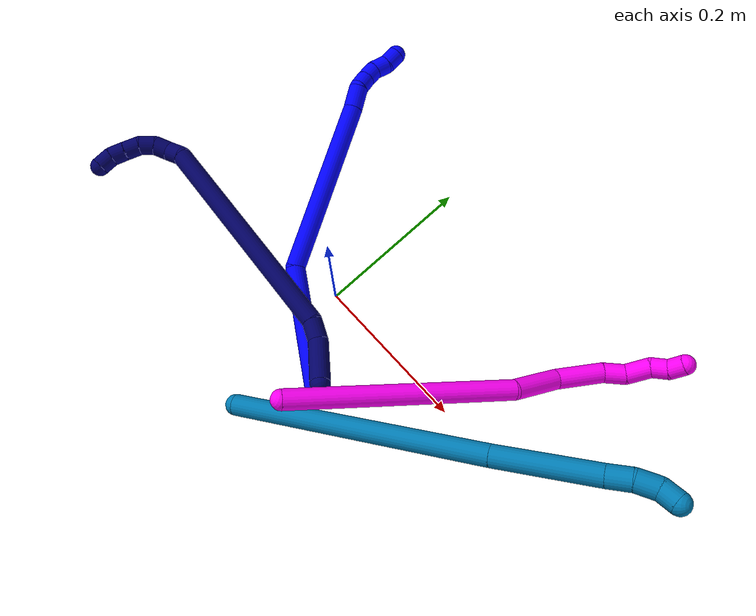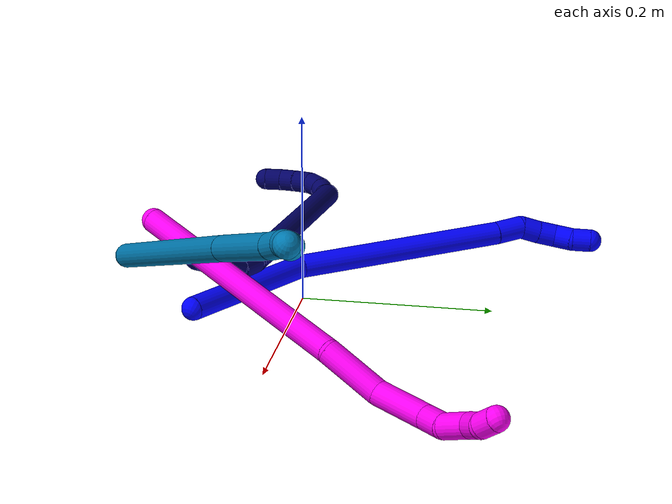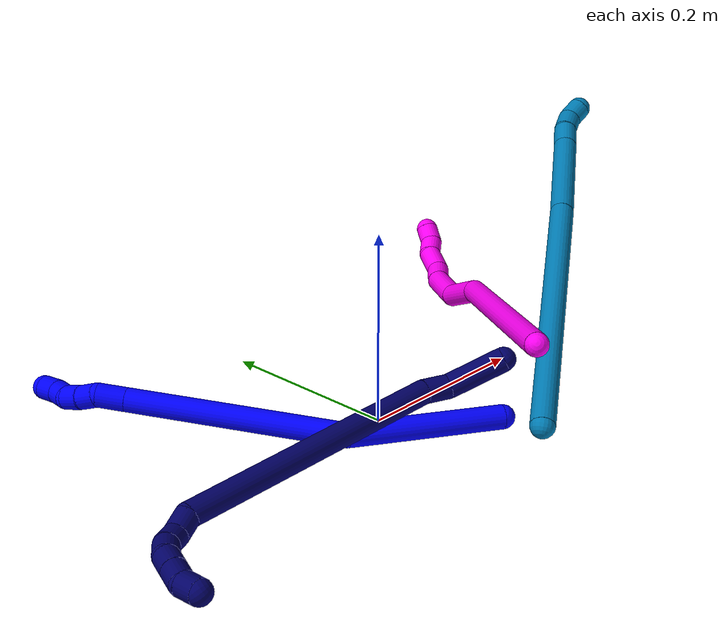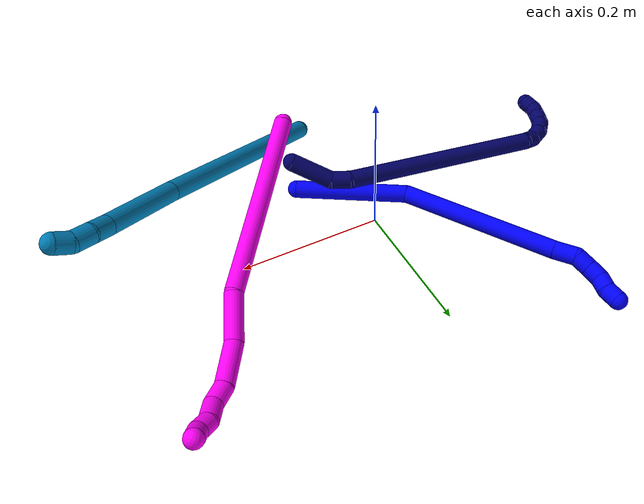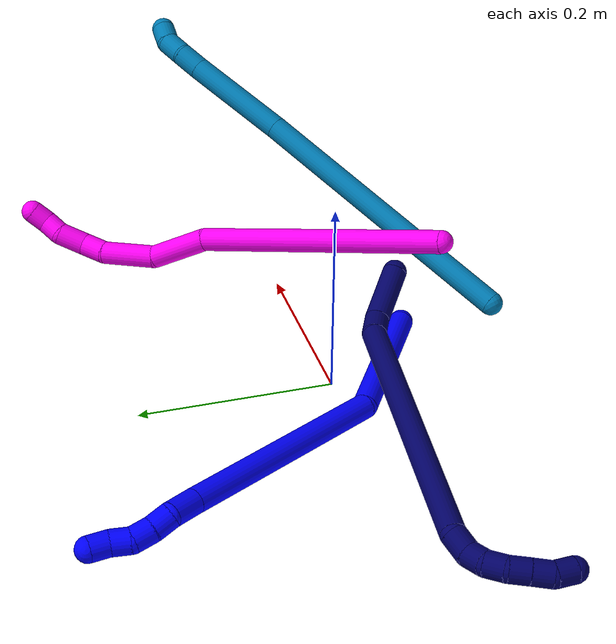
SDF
<sdf version="1.7">
 <world name="default">
  <model name="1">
   <static>0</static>
   <link name="1">
    <collision name="collision-cylinder-e_1_1_4">
     <pose>-0.035185 0.035202 0.062332 -0.514101 -0.456832 0.122067</pose>
     <geometry><cylinder><radius>0.0125</radius><length>0.15953</length></cylinder></geometry>
     <surface>
      <friction><ode><mu>1.16</mu><mu2>1.16</mu2><slip1>0</slip1><slip2>0</slip2></ode></friction>
      <contact><ode><kp>1e+06</kp><kd>1</kd><max_vel>0</max_vel><min_depth>0.001</min_depth></ode></contact>
     </surface>
    </collision>
    <visual name="visual-cylinder-e_1_1_4">
     <pose>-0.035185 0.035202 0.062332 -0.514101 -0.456832 0.122067</pose>
     <geometry><cylinder><radius>0.0125</radius><length>0.15953</length></cylinder></geometry>
     <material><ambient>0 0 1 1</ambient></material>
    </visual>
    <collision name="collision-cylinder-e_2_4_5">
     <pose>-0.081371 0.157982 0.197518 -0.876915 -0.096266 0.045166</pose>
     <geometry><cylinder><radius>0.0125</radius><length>0.228896</length></cylinder></geometry>
     <surface>
      <friction><ode><mu>1.16</mu><mu2>1.16</mu2><slip1>0</slip1><slip2>0</slip2></ode></friction>
      <contact><ode><kp>1e+06</kp><kd>1</kd><max_vel>0</max_vel><min_depth>0.001</min_depth></ode></contact>
     </surface>
    </collision>
    <visual name="visual-cylinder-e_2_4_5">
     <pose>-0.081371 0.157982 0.197518 -0.876915 -0.096266 0.045166</pose>
     <geometry><cylinder><radius>0.0125</radius><length>0.228896</length></cylinder></geometry>
     <material><ambient>0 0 1 1</ambient></material>
    </visual>
    <collision name="collision-cylinder-e_3_5_6">
     <pose>-0.094119 0.256439 0.280994 -0.797368 -0.114472 0.048264</pose>
     <geometry><cylinder><radius>0.0125</radius><length>0.030611</length></cylinder></geometry>
     <surface>
      <friction><ode><mu>1.16</mu><mu2>1.16</mu2><slip1>0</slip1><slip2>0</slip2></ode></friction>
      <contact><ode><kp>1e+06</kp><kd>1</kd><max_vel>0</max_vel><min_depth>0.001</min_depth></ode></contact>
     </surface>
    </collision>
    <visual name="visual-cylinder-e_3_5_6">
     <pose>-0.094119 0.256439 0.280994 -0.797368 -0.114472 0.048264</pose>
     <geometry><cylinder><radius>0.0125</radius><length>0.030611</length></cylinder></geometry>
     <material><ambient>0 0 1 1</ambient></material>
    </visual>
    <collision name="collision-cylinder-e_4_6_7">
     <pose>-0.098407 0.276807 0.294485 -1.27721 -0.250798 0.186626</pose>
     <geometry><cylinder><radius>0.0125</radius><length>0.020465</length></cylinder></geometry>
     <surface>
      <friction><ode><mu>1.16</mu><mu2>1.16</mu2><slip1>0</slip1><slip2>0</slip2></ode></friction>
      <contact><ode><kp>1e+06</kp><kd>1</kd><max_vel>0</max_vel><min_depth>0.001</min_depth></ode></contact>
     </surface>
    </collision>
    <visual name="visual-cylinder-e_4_6_7">
     <pose>-0.098407 0.276807 0.294485 -1.27721 -0.250798 0.186626</pose>
     <geometry><cylinder><radius>0.0125</radius><length>0.020465</length></cylinder></geometry>
     <material><ambient>0 0 1 1</ambient></material>
    </visual>
    <collision name="collision-cylinder-e_5_7_8">
     <pose>-0.102002 0.296021 0.300208 -1.28537 -0.103709 0.07768</pose>
     <geometry><cylinder><radius>0.0125</radius><length>0.020382</length></cylinder></geometry>
     <surface>
      <friction><ode><mu>1.16</mu><mu2>1.16</mu2><slip1>0</slip1><slip2>0</slip2></ode></friction>
      <contact><ode><kp>1e+06</kp><kd>1</kd><max_vel>0</max_vel><min_depth>0.001</min_depth></ode></contact>
     </surface>
    </collision>
    <visual name="visual-cylinder-e_5_7_8">
     <pose>-0.102002 0.296021 0.300208 -1.28537 -0.103709 0.07768</pose>
     <geometry><cylinder><radius>0.0125</radius><length>0.020382</length></cylinder></geometry>
     <material><ambient>0 0 1 1</ambient></material>
    </visual>
    <collision name="collision-cylinder-e_6_8_9">
     <pose>-0.100186 0.315313 0.303796 -1.49415 0.290772 -0.269566</pose>
     <geometry><cylinder><radius>0.0125</radius><length>0.020027</length></cylinder></geometry>
     <surface>
      <friction><ode><mu>1.16</mu><mu2>1.16</mu2><slip1>0</slip1><slip2>0</slip2></ode></friction>
      <contact><ode><kp>1e+06</kp><kd>1</kd><max_vel>0</max_vel><min_depth>0.001</min_depth></ode></contact>
     </surface>
    </collision>
    <visual name="visual-cylinder-e_6_8_9">
     <pose>-0.100186 0.315313 0.303796 -1.49415 0.290772 -0.269566</pose>
     <geometry><cylinder><radius>0.0125</radius><length>0.020027</length></cylinder></geometry>
     <material><ambient>0 0 1 1</ambient></material>
    </visual>
    <collision name="collision-cylinder-e_7_9_2">
     <pose>-0.096123 0.334279 0.307857 -1.23075 0.118917 -0.084118</pose>
     <geometry><cylinder><radius>0.0125</radius><length>0.020087</length></cylinder></geometry>
     <surface>
      <friction><ode><mu>1.16</mu><mu2>1.16</mu2><slip1>0</slip1><slip2>0</slip2></ode></friction>
      <contact><ode><kp>1e+06</kp><kd>1</kd><max_vel>0</max_vel><min_depth>0.001</min_depth></ode></contact>
     </surface>
    </collision>
    <visual name="visual-cylinder-e_7_9_2">
     <pose>-0.096123 0.334279 0.307857 -1.23075 0.118917 -0.084118</pose>
     <geometry><cylinder><radius>0.0125</radius><length>0.020087</length></cylinder></geometry>
     <material><ambient>0 0 1 1</ambient></material>
    </visual>
    <collision name="collision-sphere-2">
     <pose>-0.094932 0.343681 0.311183 0 -0 0</pose>
     <geometry><sphere><radius>0.0125</radius></sphere></geometry>
     <surface>
      <friction><ode><mu>1.16</mu><mu2>1.16</mu2><slip1>0</slip1><slip2>0</slip2></ode></friction>
      <contact><ode><kp>1e+06</kp><kd>1</kd><max_vel>0</max_vel><min_depth>0.001</min_depth></ode></contact>
     </surface>
    </collision>
    <visual name="visual-sphere-2">
     <pose>-0.094932 0.343681 0.311183 0 -0 0</pose>
     <geometry><sphere><radius>0.0125</radius></sphere></geometry>
     <material><ambient>0 0 1 1</ambient></material>
    </visual>
    <collision name="collision-sphere-9">
     <pose>-0.097315 0.324878 0.304531 0 -0 0</pose>
     <geometry><sphere><radius>0.0125</radius></sphere></geometry>
     <surface>
      <friction><ode><mu>1.16</mu><mu2>1.16</mu2><slip1>0</slip1><slip2>0</slip2></ode></friction>
      <contact><ode><kp>1e+06</kp><kd>1</kd><max_vel>0</max_vel><min_depth>0.001</min_depth></ode></contact>
     </surface>
    </collision>
    <visual name="visual-sphere-9">
     <pose>-0.097315 0.324878 0.304531 0 -0 0</pose>
     <geometry><sphere><radius>0.0125</radius></sphere></geometry>
     <material><ambient>0 0 1 1</ambient></material>
    </visual>
    <collision name="collision-sphere-4">
     <pose>-0.07037 0.070405 0.124664 0 -0 0</pose>
     <geometry><sphere><radius>0.0125</radius></sphere></geometry>
     <surface>
      <friction><ode><mu>1.16</mu><mu2>1.16</mu2><slip1>0</slip1><slip2>0</slip2></ode></friction>
      <contact><ode><kp>1e+06</kp><kd>1</kd><max_vel>0</max_vel><min_depth>0.001</min_depth></ode></contact>
     </surface>
    </collision>
    <visual name="visual-sphere-4">
     <pose>-0.07037 0.070405 0.124664 0 -0 0</pose>
     <geometry><sphere><radius>0.0125</radius></sphere></geometry>
     <material><ambient>0 0 1 1</ambient></material>
    </visual>
    <collision name="collision-sphere-1">
     <geometry><sphere><radius>0.0125</radius></sphere></geometry>
     <surface>
      <friction><ode><mu>1.16</mu><mu2>1.16</mu2><slip1>0</slip1><slip2>0</slip2></ode></friction>
      <contact><ode><kp>1e+06</kp><kd>1</kd><max_vel>0</max_vel><min_depth>0.001</min_depth></ode></contact>
     </surface>
    </collision>
    <visual name="visual-sphere-1">
     <geometry><sphere><radius>0.0125</radius></sphere></geometry>
     <material><ambient>0 0 1 1</ambient></material>
    </visual>
    <collision name="collision-sphere-8">
     <pose>-0.103057 0.305748 0.303062 0 -0 0</pose>
     <geometry><sphere><radius>0.0125</radius></sphere></geometry>
     <surface>
      <friction><ode><mu>1.16</mu><mu2>1.16</mu2><slip1>0</slip1><slip2>0</slip2></ode></friction>
      <contact><ode><kp>1e+06</kp><kd>1</kd><max_vel>0</max_vel><min_depth>0.001</min_depth></ode></contact>
     </surface>
    </collision>
    <visual name="visual-sphere-8">
     <pose>-0.103057 0.305748 0.303062 0 -0 0</pose>
     <geometry><sphere><radius>0.0125</radius></sphere></geometry>
     <material><ambient>0 0 1 1</ambient></material>
    </visual>
    <collision name="collision-sphere-5">
     <pose>-0.092371 0.245559 0.270372 0 -0 0</pose>
     <geometry><sphere><radius>0.0125</radius></sphere></geometry>
     <surface>
      <friction><ode><mu>1.16</mu><mu2>1.16</mu2><slip1>0</slip1><slip2>0</slip2></ode></friction>
      <contact><ode><kp>1e+06</kp><kd>1</kd><max_vel>0</max_vel><min_depth>0.001</min_depth></ode></contact>
     </surface>
    </collision>
    <visual name="visual-sphere-5">
     <pose>-0.092371 0.245559 0.270372 0 -0 0</pose>
     <geometry><sphere><radius>0.0125</radius></sphere></geometry>
     <material><ambient>0 0 1 1</ambient></material>
    </visual>
    <collision name="collision-sphere-6">
     <pose>-0.095868 0.267318 0.291617 0 -0 0</pose>
     <geometry><sphere><radius>0.0125</radius></sphere></geometry>
     <surface>
      <friction><ode><mu>1.16</mu><mu2>1.16</mu2><slip1>0</slip1><slip2>0</slip2></ode></friction>
      <contact><ode><kp>1e+06</kp><kd>1</kd><max_vel>0</max_vel><min_depth>0.001</min_depth></ode></contact>
     </surface>
    </collision>
    <visual name="visual-sphere-6">
     <pose>-0.095868 0.267318 0.291617 0 -0 0</pose>
     <geometry><sphere><radius>0.0125</radius></sphere></geometry>
     <material><ambient>0 0 1 1</ambient></material>
    </visual>
    <collision name="collision-sphere-7">
     <pose>-0.100947 0.286295 0.297354 0 -0 0</pose>
     <geometry><sphere><radius>0.0125</radius></sphere></geometry>
     <surface>
      <friction><ode><mu>1.16</mu><mu2>1.16</mu2><slip1>0</slip1><slip2>0</slip2></ode></friction>
      <contact><ode><kp>1e+06</kp><kd>1</kd><max_vel>0</max_vel><min_depth>0.001</min_depth></ode></contact>
     </surface>
    </collision>
    <visual name="visual-sphere-7">
     <pose>-0.100947 0.286295 0.297354 0 -0 0</pose>
     <geometry><sphere><radius>0.0125</radius></sphere></geometry>
     <material><ambient>0 0 1 1</ambient></material>
    </visual>
    <inertial>
     <pose>-0.0703 0.148711 0.176341 0 -0 0</pose>
     <mass>0.5</mass>
     <inertia>
      <ixx>0.001394</ixx>
      <ixy>0</ixy>
      <ixz>0</ixz>
      <iyy>0.001069</iyy>
      <iyz>0</iyz>
      <izz>-0.000658</izz>
     </inertia>
    </inertial>
   </link>
   <pose>0.074325 -0.100117 0.011489 -0.525991 -0.793883 0.322089</pose>
  </model>
  <model name="7">
   <static>0</static>
   <link name="7">
    <collision name="collision-cylinder-e_1_1_4">
     <pose>-0.000614 -0.005677 0.02973 0.188693 -0.02029 -0.00192</pose>
     <geometry><cylinder><radius>0.0125</radius><length>0.060546</length></cylinder></geometry>
     <surface>
      <friction><ode><mu>1.16</mu><mu2>1.16</mu2><slip1>0</slip1><slip2>0</slip2></ode></friction>
      <contact><ode><kp>1e+06</kp><kd>1</kd><max_vel>0</max_vel><min_depth>0.001</min_depth></ode></contact>
     </surface>
    </collision>
    <visual name="visual-cylinder-e_1_1_4">
     <pose>-0.000614 -0.005677 0.02973 0.188693 -0.02029 -0.00192</pose>
     <geometry><cylinder><radius>0.0125</radius><length>0.060546</length></cylinder></geometry>
     <material><ambient>0.003922 0 0.403922 1</ambient></material>
    </visual>
    <collision name="collision-cylinder-e_2_4_5">
     <pose>-0.007382 -0.013834 0.071319 0.206097 -0.46996 -0.049506</pose>
     <geometry><cylinder><radius>0.0125</radius><length>0.027179</length></cylinder></geometry>
     <surface>
      <friction><ode><mu>1.16</mu><mu2>1.16</mu2><slip1>0</slip1><slip2>0</slip2></ode></friction>
      <contact><ode><kp>1e+06</kp><kd>1</kd><max_vel>0</max_vel><min_depth>0.001</min_depth></ode></contact>
     </surface>
    </collision>
    <visual name="visual-cylinder-e_2_4_5">
     <pose>-0.007382 -0.013834 0.071319 0.206097 -0.46996 -0.049506</pose>
     <geometry><cylinder><radius>0.0125</radius><length>0.027179</length></cylinder></geometry>
     <material><ambient>0.003922 0 0.403922 1</ambient></material>
    </visual>
    <collision name="collision-cylinder-e_3_5_6">
     <pose>-0.090787 0.00655 0.20323 -0.188195 -0.563704 0.054642</pose>
     <geometry><cylinder><radius>0.0125</radius><length>0.289155</length></cylinder></geometry>
     <surface>
      <friction><ode><mu>1.16</mu><mu2>1.16</mu2><slip1>0</slip1><slip2>0</slip2></ode></friction>
      <contact><ode><kp>1e+06</kp><kd>1</kd><max_vel>0</max_vel><min_depth>0.001</min_depth></ode></contact>
     </surface>
    </collision>
    <visual name="visual-cylinder-e_3_5_6">
     <pose>-0.090787 0.00655 0.20323 -0.188195 -0.563704 0.054642</pose>
     <geometry><cylinder><radius>0.0125</radius><length>0.289155</length></cylinder></geometry>
     <material><ambient>0.003922 0 0.403922 1</ambient></material>
    </visual>
    <collision name="collision-cylinder-e_4_6_7">
     <pose>-0.172062 0.036074 0.331624 -0.673738 -0.360406 0.127432</pose>
     <geometry><cylinder><radius>0.0125</radius><length>0.022818</length></cylinder></geometry>
     <surface>
      <friction><ode><mu>1.16</mu><mu2>1.16</mu2><slip1>0</slip1><slip2>0</slip2></ode></friction>
      <contact><ode><kp>1e+06</kp><kd>1</kd><max_vel>0</max_vel><min_depth>0.001</min_depth></ode></contact>
     </surface>
    </collision>
    <visual name="visual-cylinder-e_4_6_7">
     <pose>-0.172062 0.036074 0.331624 -0.673738 -0.360406 0.127432</pose>
     <geometry><cylinder><radius>0.0125</radius><length>0.022818</length></cylinder></geometry>
     <material><ambient>0.003922 0 0.403922 1</ambient></material>
    </visual>
    <collision name="collision-cylinder-e_5_7_8">
     <pose>-0.183216 0.048072 0.344694 -0.845937 -0.78554 0.368745</pose>
     <geometry><cylinder><radius>0.0125</radius><length>0.020166</length></cylinder></geometry>
     <surface>
      <friction><ode><mu>1.16</mu><mu2>1.16</mu2><slip1>0</slip1><slip2>0</slip2></ode></friction>
      <contact><ode><kp>1e+06</kp><kd>1</kd><max_vel>0</max_vel><min_depth>0.001</min_depth></ode></contact>
     </surface>
    </collision>
    <visual name="visual-cylinder-e_5_7_8">
     <pose>-0.183216 0.048072 0.344694 -0.845937 -0.78554 0.368745</pose>
     <geometry><cylinder><radius>0.0125</radius><length>0.020166</length></cylinder></geometry>
     <material><ambient>0.003922 0 0.403922 1</ambient></material>
    </visual>
    <collision name="collision-cylinder-e_6_8_9">
     <pose>-0.196363 0.061267 0.351193 -1.34896 -0.641426 0.519219</pose>
     <geometry><cylinder><radius>0.0125</radius><length>0.020109</length></cylinder></geometry>
     <surface>
      <friction><ode><mu>1.16</mu><mu2>1.16</mu2><slip1>0</slip1><slip2>0</slip2></ode></friction>
      <contact><ode><kp>1e+06</kp><kd>1</kd><max_vel>0</max_vel><min_depth>0.001</min_depth></ode></contact>
     </surface>
    </collision>
    <visual name="visual-cylinder-e_6_8_9">
     <pose>-0.196363 0.061267 0.351193 -1.34896 -0.641426 0.519219</pose>
     <geometry><cylinder><radius>0.0125</radius><length>0.020109</length></cylinder></geometry>
     <material><ambient>0.003922 0 0.403922 1</ambient></material>
    </visual>
    <collision name="collision-cylinder-e_7_9_10">
     <pose>-0.205982 0.078445 0.352394 -1.63202 -0.368318 0.391015</pose>
     <geometry><cylinder><radius>0.0125</radius><length>0.020016</length></cylinder></geometry>
     <surface>
      <friction><ode><mu>1.16</mu><mu2>1.16</mu2><slip1>0</slip1><slip2>0</slip2></ode></friction>
      <contact><ode><kp>1e+06</kp><kd>1</kd><max_vel>0</max_vel><min_depth>0.001</min_depth></ode></contact>
     </surface>
    </collision>
    <visual name="visual-cylinder-e_7_9_10">
     <pose>-0.205982 0.078445 0.352394 -1.63202 -0.368318 0.391015</pose>
     <geometry><cylinder><radius>0.0125</radius><length>0.020016</length></cylinder></geometry>
     <material><ambient>0.003922 0 0.403922 1</ambient></material>
    </visual>
    <collision name="collision-cylinder-e_8_10_11">
     <pose>-0.212911 0.097184 0.351329 -1.6232 -0.338956 0.356827</pose>
     <geometry><cylinder><radius>0.0125</radius><length>0.020005</length></cylinder></geometry>
     <surface>
      <friction><ode><mu>1.16</mu><mu2>1.16</mu2><slip1>0</slip1><slip2>0</slip2></ode></friction>
      <contact><ode><kp>1e+06</kp><kd>1</kd><max_vel>0</max_vel><min_depth>0.001</min_depth></ode></contact>
     </surface>
    </collision>
    <visual name="visual-cylinder-e_8_10_11">
     <pose>-0.212911 0.097184 0.351329 -1.6232 -0.338956 0.356827</pose>
     <geometry><cylinder><radius>0.0125</radius><length>0.020005</length></cylinder></geometry>
     <material><ambient>0.003922 0 0.403922 1</ambient></material>
    </visual>
    <collision name="collision-cylinder-e_9_11_2">
     <pose>-0.217895 0.115464 0.346498 -2.02604 -0.166574 0.266046</pose>
     <geometry><cylinder><radius>0.0125</radius><length>0.020006</length></cylinder></geometry>
     <surface>
      <friction><ode><mu>1.16</mu><mu2>1.16</mu2><slip1>0</slip1><slip2>0</slip2></ode></friction>
      <contact><ode><kp>1e+06</kp><kd>1</kd><max_vel>0</max_vel><min_depth>0.001</min_depth></ode></contact>
     </surface>
    </collision>
    <visual name="visual-cylinder-e_9_11_2">
     <pose>-0.217895 0.115464 0.346498 -2.02604 -0.166574 0.266046</pose>
     <geometry><cylinder><radius>0.0125</radius><length>0.020006</length></cylinder></geometry>
     <material><ambient>0.003922 0 0.403922 1</ambient></material>
    </visual>
    <collision name="collision-sphere-2">
     <pose>-0.219554 0.124324 0.34216 0 -0 0</pose>
     <geometry><sphere><radius>0.0125</radius></sphere></geometry>
     <surface>
      <friction><ode><mu>1.16</mu><mu2>1.16</mu2><slip1>0</slip1><slip2>0</slip2></ode></friction>
      <contact><ode><kp>1e+06</kp><kd>1</kd><max_vel>0</max_vel><min_depth>0.001</min_depth></ode></contact>
     </surface>
    </collision>
    <visual name="visual-sphere-2">
     <pose>-0.219554 0.124324 0.34216 0 -0 0</pose>
     <geometry><sphere><radius>0.0125</radius></sphere></geometry>
     <material><ambient>0.003922 0 0.403922 1</ambient></material>
    </visual>
    <collision name="collision-sphere-11">
     <pose>-0.216237 0.106605 0.350835 0 -0 0</pose>
     <geometry><sphere><radius>0.0125</radius></sphere></geometry>
     <surface>
      <friction><ode><mu>1.16</mu><mu2>1.16</mu2><slip1>0</slip1><slip2>0</slip2></ode></friction>
      <contact><ode><kp>1e+06</kp><kd>1</kd><max_vel>0</max_vel><min_depth>0.001</min_depth></ode></contact>
     </surface>
    </collision>
    <visual name="visual-sphere-11">
     <pose>-0.216237 0.106605 0.350835 0 -0 0</pose>
     <geometry><sphere><radius>0.0125</radius></sphere></geometry>
     <material><ambient>0.003922 0 0.403922 1</ambient></material>
    </visual>
    <collision name="collision-sphere-10">
     <pose>-0.209585 0.087764 0.351823 0 -0 0</pose>
     <geometry><sphere><radius>0.0125</radius></sphere></geometry>
     <surface>
      <friction><ode><mu>1.16</mu><mu2>1.16</mu2><slip1>0</slip1><slip2>0</slip2></ode></friction>
      <contact><ode><kp>1e+06</kp><kd>1</kd><max_vel>0</max_vel><min_depth>0.001</min_depth></ode></contact>
     </surface>
    </collision>
    <visual name="visual-sphere-10">
     <pose>-0.209585 0.087764 0.351823 0 -0 0</pose>
     <geometry><sphere><radius>0.0125</radius></sphere></geometry>
     <material><ambient>0.003922 0 0.403922 1</ambient></material>
    </visual>
    <collision name="collision-sphere-9">
     <pose>-0.202379 0.069126 0.352966 0 -0 0</pose>
     <geometry><sphere><radius>0.0125</radius></sphere></geometry>
     <surface>
      <friction><ode><mu>1.16</mu><mu2>1.16</mu2><slip1>0</slip1><slip2>0</slip2></ode></friction>
      <contact><ode><kp>1e+06</kp><kd>1</kd><max_vel>0</max_vel><min_depth>0.001</min_depth></ode></contact>
     </surface>
    </collision>
    <visual name="visual-sphere-9">
     <pose>-0.202379 0.069126 0.352966 0 -0 0</pose>
     <geometry><sphere><radius>0.0125</radius></sphere></geometry>
     <material><ambient>0.003922 0 0.403922 1</ambient></material>
    </visual>
    <collision name="collision-sphere-4">
     <pose>-0.001228 -0.011355 0.059459 0 -0 0</pose>
     <geometry><sphere><radius>0.0125</radius></sphere></geometry>
     <surface>
      <friction><ode><mu>1.16</mu><mu2>1.16</mu2><slip1>0</slip1><slip2>0</slip2></ode></friction>
      <contact><ode><kp>1e+06</kp><kd>1</kd><max_vel>0</max_vel><min_depth>0.001</min_depth></ode></contact>
     </surface>
    </collision>
    <visual name="visual-sphere-4">
     <pose>-0.001228 -0.011355 0.059459 0 -0 0</pose>
     <geometry><sphere><radius>0.0125</radius></sphere></geometry>
     <material><ambient>0.003922 0 0.403922 1</ambient></material>
    </visual>
    <collision name="collision-sphere-1">
     <geometry><sphere><radius>0.0125</radius></sphere></geometry>
     <surface>
      <friction><ode><mu>1.16</mu><mu2>1.16</mu2><slip1>0</slip1><slip2>0</slip2></ode></friction>
      <contact><ode><kp>1e+06</kp><kd>1</kd><max_vel>0</max_vel><min_depth>0.001</min_depth></ode></contact>
     </surface>
    </collision>
    <visual name="visual-sphere-1">
     <geometry><sphere><radius>0.0125</radius></sphere></geometry>
     <material><ambient>0.003922 0 0.403922 1</ambient></material>
    </visual>
    <collision name="collision-sphere-8">
     <pose>-0.190347 0.053408 0.349421 0 -0 0</pose>
     <geometry><sphere><radius>0.0125</radius></sphere></geometry>
     <surface>
      <friction><ode><mu>1.16</mu><mu2>1.16</mu2><slip1>0</slip1><slip2>0</slip2></ode></friction>
      <contact><ode><kp>1e+06</kp><kd>1</kd><max_vel>0</max_vel><min_depth>0.001</min_depth></ode></contact>
     </surface>
    </collision>
    <visual name="visual-sphere-8">
     <pose>-0.190347 0.053408 0.349421 0 -0 0</pose>
     <geometry><sphere><radius>0.0125</radius></sphere></geometry>
     <material><ambient>0.003922 0 0.403922 1</ambient></material>
    </visual>
    <collision name="collision-sphere-5">
     <pose>-0.013537 -0.016314 0.083179 0 -0 0</pose>
     <geometry><sphere><radius>0.0125</radius></sphere></geometry>
     <surface>
      <friction><ode><mu>1.16</mu><mu2>1.16</mu2><slip1>0</slip1><slip2>0</slip2></ode></friction>
      <contact><ode><kp>1e+06</kp><kd>1</kd><max_vel>0</max_vel><min_depth>0.001</min_depth></ode></contact>
     </surface>
    </collision>
    <visual name="visual-sphere-5">
     <pose>-0.013537 -0.016314 0.083179 0 -0 0</pose>
     <geometry><sphere><radius>0.0125</radius></sphere></geometry>
     <material><ambient>0.003922 0 0.403922 1</ambient></material>
    </visual>
    <collision name="collision-sphere-6">
     <pose>-0.168038 0.029414 0.323281 0 -0 0</pose>
     <geometry><sphere><radius>0.0125</radius></sphere></geometry>
     <surface>
      <friction><ode><mu>1.16</mu><mu2>1.16</mu2><slip1>0</slip1><slip2>0</slip2></ode></friction>
      <contact><ode><kp>1e+06</kp><kd>1</kd><max_vel>0</max_vel><min_depth>0.001</min_depth></ode></contact>
     </surface>
    </collision>
    <visual name="visual-sphere-6">
     <pose>-0.168038 0.029414 0.323281 0 -0 0</pose>
     <geometry><sphere><radius>0.0125</radius></sphere></geometry>
     <material><ambient>0.003922 0 0.403922 1</ambient></material>
    </visual>
    <collision name="collision-sphere-7">
     <pose>-0.176085 0.042735 0.339967 0 -0 0</pose>
     <geometry><sphere><radius>0.0125</radius></sphere></geometry>
     <surface>
      <friction><ode><mu>1.16</mu><mu2>1.16</mu2><slip1>0</slip1><slip2>0</slip2></ode></friction>
      <contact><ode><kp>1e+06</kp><kd>1</kd><max_vel>0</max_vel><min_depth>0.001</min_depth></ode></contact>
     </surface>
    </collision>
    <visual name="visual-sphere-7">
     <pose>-0.176085 0.042735 0.339967 0 -0 0</pose>
     <geometry><sphere><radius>0.0125</radius></sphere></geometry>
     <material><ambient>0.003922 0 0.403922 1</ambient></material>
    </visual>
    <inertial>
     <pose>-0.101601 0.020046 0.210195 0 -0 0</pose>
     <mass>0.5</mass>
     <inertia><ixx>0.00182</ixx><ixy>0</ixy><ixz>0</ixz><iyy>0.00213</iyy><iyz>0</iyz><izz>0.000792</izz></inertia>
    </inertial>
   </link>
   <pose>0.081306 -0.09325 0.070274 -2.49167 0.866592 0.306283</pose>
  </model>
  <model name="9">
   <static>0</static>
   <link name="9">
    <collision name="collision-cylinder-e_1_1_4">
     <pose>0.065344 0.023526 0.138647 -0.168079 0.434975 -0.037226</pose>
     <geometry><cylinder><radius>0.0125</radius><length>0.310137</length></cylinder></geometry>
     <surface>
      <friction><ode><mu>1.16</mu><mu2>1.16</mu2><slip1>0</slip1><slip2>0</slip2></ode></friction>
      <contact><ode><kp>1e+06</kp><kd>1</kd><max_vel>0</max_vel><min_depth>0.001</min_depth></ode></contact>
     </surface>
    </collision>
    <visual name="visual-cylinder-e_1_1_4">
     <pose>0.065344 0.023526 0.138647 -0.168079 0.434975 -0.037226</pose>
     <geometry><cylinder><radius>0.0125</radius><length>0.310137</length></cylinder></geometry>
     <material><ambient>0 0.490196 0.709804 1</ambient></material>
    </visual>
    <collision name="collision-cylinder-e_2_4_5">
     <pose>0.155506 0.057428 0.32895 -0.198251 0.440208 -0.044493</pose>
     <geometry><cylinder><radius>0.0125</radius><length>0.116481</length></cylinder></geometry>
     <surface>
      <friction><ode><mu>1.16</mu><mu2>1.16</mu2><slip1>0</slip1><slip2>0</slip2></ode></friction>
      <contact><ode><kp>1e+06</kp><kd>1</kd><max_vel>0</max_vel><min_depth>0.001</min_depth></ode></contact>
     </surface>
    </collision>
    <visual name="visual-cylinder-e_2_4_5">
     <pose>0.155506 0.057428 0.32895 -0.198251 0.440208 -0.044493</pose>
     <geometry><cylinder><radius>0.0125</radius><length>0.116481</length></cylinder></geometry>
     <material><ambient>0 0.490196 0.709804 1</ambient></material>
    </visual>
    <collision name="collision-cylinder-e_3_5_6">
     <pose>0.185309 0.070488 0.393057 -0.212174 0.373061 -0.040188</pose>
     <geometry><cylinder><radius>0.0125</radius><length>0.027355</length></cylinder></geometry>
     <surface>
      <friction><ode><mu>1.16</mu><mu2>1.16</mu2><slip1>0</slip1><slip2>0</slip2></ode></friction>
      <contact><ode><kp>1e+06</kp><kd>1</kd><max_vel>0</max_vel><min_depth>0.001</min_depth></ode></contact>
     </surface>
    </collision>
    <visual name="visual-cylinder-e_3_5_6">
     <pose>0.185309 0.070488 0.393057 -0.212174 0.373061 -0.040188</pose>
     <geometry><cylinder><radius>0.0125</radius><length>0.027355</length></cylinder></geometry>
     <material><ambient>0 0.490196 0.709804 1</ambient></material>
    </visual>
    <collision name="collision-cylinder-e_4_6_7">
     <pose>0.19699 0.073622 0.416186 -0.042262 0.559691 -0.012147</pose>
     <geometry><cylinder><radius>0.0125</radius><length>0.025224</length></cylinder></geometry>
     <surface>
      <friction><ode><mu>1.16</mu><mu2>1.16</mu2><slip1>0</slip1><slip2>0</slip2></ode></friction>
      <contact><ode><kp>1e+06</kp><kd>1</kd><max_vel>0</max_vel><min_depth>0.001</min_depth></ode></contact>
     </surface>
    </collision>
    <visual name="visual-cylinder-e_4_6_7">
     <pose>0.19699 0.073622 0.416186 -0.042262 0.559691 -0.012147</pose>
     <geometry><cylinder><radius>0.0125</radius><length>0.025224</length></cylinder></geometry>
     <material><ambient>0 0.490196 0.709804 1</ambient></material>
    </visual>
    <collision name="collision-cylinder-e_5_7_2">
     <pose>0.207475 0.070429 0.435839 0.385732 0.372821 0.073631</pose>
     <geometry><cylinder><radius>0.0125</radius><length>0.020803</length></cylinder></geometry>
     <surface>
      <friction><ode><mu>1.16</mu><mu2>1.16</mu2><slip1>0</slip1><slip2>0</slip2></ode></friction>
      <contact><ode><kp>1e+06</kp><kd>1</kd><max_vel>0</max_vel><min_depth>0.001</min_depth></ode></contact>
     </surface>
    </collision>
    <visual name="visual-cylinder-e_5_7_2">
     <pose>0.207475 0.070429 0.435839 0.385732 0.372821 0.073631</pose>
     <geometry><cylinder><radius>0.0125</radius><length>0.020803</length></cylinder></geometry>
     <material><ambient>0 0.490196 0.709804 1</ambient></material>
    </visual>
    <collision name="collision-sphere-2">
     <pose>0.211263 0.066784 0.444814 0 -0 0</pose>
     <geometry><sphere><radius>0.0125</radius></sphere></geometry>
     <surface>
      <friction><ode><mu>1.16</mu><mu2>1.16</mu2><slip1>0</slip1><slip2>0</slip2></ode></friction>
      <contact><ode><kp>1e+06</kp><kd>1</kd><max_vel>0</max_vel><min_depth>0.001</min_depth></ode></contact>
     </surface>
    </collision>
    <visual name="visual-sphere-2">
     <pose>0.211263 0.066784 0.444814 0 -0 0</pose>
     <geometry><sphere><radius>0.0125</radius></sphere></geometry>
     <material><ambient>0 0.490196 0.709804 1</ambient></material>
    </visual>
    <collision name="collision-sphere-7">
     <pose>0.203686 0.074073 0.426864 0 -0 0</pose>
     <geometry><sphere><radius>0.0125</radius></sphere></geometry>
     <surface>
      <friction><ode><mu>1.16</mu><mu2>1.16</mu2><slip1>0</slip1><slip2>0</slip2></ode></friction>
      <contact><ode><kp>1e+06</kp><kd>1</kd><max_vel>0</max_vel><min_depth>0.001</min_depth></ode></contact>
     </surface>
    </collision>
    <visual name="visual-sphere-7">
     <pose>0.203686 0.074073 0.426864 0 -0 0</pose>
     <geometry><sphere><radius>0.0125</radius></sphere></geometry>
     <material><ambient>0 0.490196 0.709804 1</ambient></material>
    </visual>
    <collision name="collision-sphere-6">
     <pose>0.190294 0.07317 0.405508 0 -0 0</pose>
     <geometry><sphere><radius>0.0125</radius></sphere></geometry>
     <surface>
      <friction><ode><mu>1.16</mu><mu2>1.16</mu2><slip1>0</slip1><slip2>0</slip2></ode></friction>
      <contact><ode><kp>1e+06</kp><kd>1</kd><max_vel>0</max_vel><min_depth>0.001</min_depth></ode></contact>
     </surface>
    </collision>
    <visual name="visual-sphere-6">
     <pose>0.190294 0.07317 0.405508 0 -0 0</pose>
     <geometry><sphere><radius>0.0125</radius></sphere></geometry>
     <material><ambient>0 0.490196 0.709804 1</ambient></material>
    </visual>
    <collision name="collision-sphere-5">
     <pose>0.180324 0.067806 0.380606 0 -0 0</pose>
     <geometry><sphere><radius>0.0125</radius></sphere></geometry>
     <surface>
      <friction><ode><mu>1.16</mu><mu2>1.16</mu2><slip1>0</slip1><slip2>0</slip2></ode></friction>
      <contact><ode><kp>1e+06</kp><kd>1</kd><max_vel>0</max_vel><min_depth>0.001</min_depth></ode></contact>
     </surface>
    </collision>
    <visual name="visual-sphere-5">
     <pose>0.180324 0.067806 0.380606 0 -0 0</pose>
     <geometry><sphere><radius>0.0125</radius></sphere></geometry>
     <material><ambient>0 0.490196 0.709804 1</ambient></material>
    </visual>
    <collision name="collision-sphere-1">
     <geometry><sphere><radius>0.0125</radius></sphere></geometry>
     <surface>
      <friction><ode><mu>1.16</mu><mu2>1.16</mu2><slip1>0</slip1><slip2>0</slip2></ode></friction>
      <contact><ode><kp>1e+06</kp><kd>1</kd><max_vel>0</max_vel><min_depth>0.001</min_depth></ode></contact>
     </surface>
    </collision>
    <visual name="visual-sphere-1">
     <geometry><sphere><radius>0.0125</radius></sphere></geometry>
     <material><ambient>0 0.490196 0.709804 1</ambient></material>
    </visual>
    <collision name="collision-sphere-4">
     <pose>0.130688 0.047051 0.277294 0 -0 0</pose>
     <geometry><sphere><radius>0.0125</radius></sphere></geometry>
     <surface>
      <friction><ode><mu>1.16</mu><mu2>1.16</mu2><slip1>0</slip1><slip2>0</slip2></ode></friction>
      <contact><ode><kp>1e+06</kp><kd>1</kd><max_vel>0</max_vel><min_depth>0.001</min_depth></ode></contact>
     </surface>
    </collision>
    <visual name="visual-sphere-4">
     <pose>0.130688 0.047051 0.277294 0 -0 0</pose>
     <geometry><sphere><radius>0.0125</radius></sphere></geometry>
     <material><ambient>0 0.490196 0.709804 1</ambient></material>
    </visual>
    <inertial>
     <pose>0.105466 0.038472 0.223265 0 -0 0</pose>
     <mass>0.5</mass>
     <inertia>
      <ixx>0.00232</ixx>
      <ixy>0</ixy>
      <ixz>0</ixz>
      <iyy>0.002524</iyy>
      <iyz>0</iyz>
      <izz>-0.001482</izz>
     </inertia>
    </inertial>
   </link>
   <pose>0.029899 -0.181404 0.047678 -0.105433 0.752845 0.328997</pose>
  </model>
  <model name="10">
   <static>0</static>
   <link name="10">
    <collision name="collision-cylinder-e_1_1_4">
     <pose>0.04142 0.044779 0.1236 -0.347585 0.305226 -0.053993</pose>
     <geometry><cylinder><radius>0.0125</radius><length>0.275664</length></cylinder></geometry>
     <surface>
      <friction><ode><mu>1.16</mu><mu2>1.16</mu2><slip1>0</slip1><slip2>0</slip2></ode></friction>
      <contact><ode><kp>1e+06</kp><kd>1</kd><max_vel>0</max_vel><min_depth>0.001</min_depth></ode></contact>
     </surface>
    </collision>
    <visual name="visual-cylinder-e_1_1_4">
     <pose>0.04142 0.044779 0.1236 -0.347585 0.305226 -0.053993</pose>
     <geometry><cylinder><radius>0.0125</radius><length>0.275664</length></cylinder></geometry>
     <material><ambient>1 0 0.964706 1</ambient></material>
    </visual>
    <collision name="collision-cylinder-e_2_4_5">
     <pose>0.096938 0.090637 0.275797 -0.037692 0.457764 -0.008782</pose>
     <geometry><cylinder><radius>0.0125</radius><length>0.063804</length></cylinder></geometry>
     <surface>
      <friction><ode><mu>1.16</mu><mu2>1.16</mu2><slip1>0</slip1><slip2>0</slip2></ode></friction>
      <contact><ode><kp>1e+06</kp><kd>1</kd><max_vel>0</max_vel><min_depth>0.001</min_depth></ode></contact>
     </surface>
    </collision>
    <visual name="visual-cylinder-e_2_4_5">
     <pose>0.096938 0.090637 0.275797 -0.037692 0.457764 -0.008782</pose>
     <geometry><cylinder><radius>0.0125</radius><length>0.063804</length></cylinder></geometry>
     <material><ambient>1 0 0.964706 1</ambient></material>
    </visual>
    <collision name="collision-cylinder-e_3_5_6">
     <pose>0.122769 0.104037 0.329353 -0.458545 0.398884 -0.094274</pose>
     <geometry><cylinder><radius>0.0125</radius><length>0.060413</length></cylinder></geometry>
     <surface>
      <friction><ode><mu>1.16</mu><mu2>1.16</mu2><slip1>0</slip1><slip2>0</slip2></ode></friction>
      <contact><ode><kp>1e+06</kp><kd>1</kd><max_vel>0</max_vel><min_depth>0.001</min_depth></ode></contact>
     </surface>
    </collision>
    <visual name="visual-cylinder-e_3_5_6">
     <pose>0.122769 0.104037 0.329353 -0.458545 0.398884 -0.094274</pose>
     <geometry><cylinder><radius>0.0125</radius><length>0.060413</length></cylinder></geometry>
     <material><ambient>1 0 0.964706 1</ambient></material>
    </visual>
    <collision name="collision-cylinder-e_4_6_7">
     <pose>0.136815 0.124704 0.365065 -0.660115 0.168398 -0.057812</pose>
     <geometry><cylinder><radius>0.0125</radius><length>0.027613</length></cylinder></geometry>
     <surface>
      <friction><ode><mu>1.16</mu><mu2>1.16</mu2><slip1>0</slip1><slip2>0</slip2></ode></friction>
      <contact><ode><kp>1e+06</kp><kd>1</kd><max_vel>0</max_vel><min_depth>0.001</min_depth></ode></contact>
     </surface>
    </collision>
    <visual name="visual-cylinder-e_4_6_7">
     <pose>0.136815 0.124704 0.365065 -0.660115 0.168398 -0.057812</pose>
     <geometry><cylinder><radius>0.0125</radius><length>0.027613</length></cylinder></geometry>
     <material><ambient>1 0 0.964706 1</ambient></material>
    </visual>
    <collision name="collision-cylinder-e_5_7_8">
     <pose>0.146422 0.144054 0.384121 -0.92423 0.486613 -0.246025</pose>
     <geometry><cylinder><radius>0.0125</radius><length>0.031191</length></cylinder></geometry>
     <surface>
      <friction><ode><mu>1.16</mu><mu2>1.16</mu2><slip1>0</slip1><slip2>0</slip2></ode></friction>
      <contact><ode><kp>1e+06</kp><kd>1</kd><max_vel>0</max_vel><min_depth>0.001</min_depth></ode></contact>
     </surface>
    </collision>
    <visual name="visual-cylinder-e_5_7_8">
     <pose>0.146422 0.144054 0.384121 -0.92423 0.486613 -0.246025</pose>
     <geometry><cylinder><radius>0.0125</radius><length>0.031191</length></cylinder></geometry>
     <material><ambient>1 0 0.964706 1</ambient></material>
    </visual>
    <collision name="collision-cylinder-e_6_8_9">
     <pose>0.154614 0.163818 0.398333 -0.977634 0.084913 -0.045182</pose>
     <geometry><cylinder><radius>0.0125</radius><length>0.021211</length></cylinder></geometry>
     <surface>
      <friction><ode><mu>1.16</mu><mu2>1.16</mu2><slip1>0</slip1><slip2>0</slip2></ode></friction>
      <contact><ode><kp>1e+06</kp><kd>1</kd><max_vel>0</max_vel><min_depth>0.001</min_depth></ode></contact>
     </surface>
    </collision>
    <visual name="visual-cylinder-e_6_8_9">
     <pose>0.154614 0.163818 0.398333 -0.977634 0.084913 -0.045182</pose>
     <geometry><cylinder><radius>0.0125</radius><length>0.021211</length></cylinder></geometry>
     <material><ambient>1 0 0.964706 1</ambient></material>
    </visual>
    <collision name="collision-cylinder-e_7_9_2">
     <pose>0.159768 0.181172 0.407263 -1.23246 0.436948 -0.311928</pose>
     <geometry><cylinder><radius>0.0125</radius><length>0.020105</length></cylinder></geometry>
     <surface>
      <friction><ode><mu>1.16</mu><mu2>1.16</mu2><slip1>0</slip1><slip2>0</slip2></ode></friction>
      <contact><ode><kp>1e+06</kp><kd>1</kd><max_vel>0</max_vel><min_depth>0.001</min_depth></ode></contact>
     </surface>
    </collision>
    <visual name="visual-cylinder-e_7_9_2">
     <pose>0.159768 0.181172 0.407263 -1.23246 0.436948 -0.311928</pose>
     <geometry><cylinder><radius>0.0125</radius><length>0.020105</length></cylinder></geometry>
     <material><ambient>1 0 0.964706 1</ambient></material>
    </visual>
    <collision name="collision-sphere-2">
     <pose>0.164021 0.189763 0.410286 0 -0 0</pose>
     <geometry><sphere><radius>0.0125</radius></sphere></geometry>
     <surface>
      <friction><ode><mu>1.16</mu><mu2>1.16</mu2><slip1>0</slip1><slip2>0</slip2></ode></friction>
      <contact><ode><kp>1e+06</kp><kd>1</kd><max_vel>0</max_vel><min_depth>0.001</min_depth></ode></contact>
     </surface>
    </collision>
    <visual name="visual-sphere-2">
     <pose>0.164021 0.189763 0.410286 0 -0 0</pose>
     <geometry><sphere><radius>0.0125</radius></sphere></geometry>
     <material><ambient>1 0 0.964706 1</ambient></material>
    </visual>
    <collision name="collision-sphere-9">
     <pose>0.155514 0.17258 0.40424 0 -0 0</pose>
     <geometry><sphere><radius>0.0125</radius></sphere></geometry>
     <surface>
      <friction><ode><mu>1.16</mu><mu2>1.16</mu2><slip1>0</slip1><slip2>0</slip2></ode></friction>
      <contact><ode><kp>1e+06</kp><kd>1</kd><max_vel>0</max_vel><min_depth>0.001</min_depth></ode></contact>
     </surface>
    </collision>
    <visual name="visual-sphere-9">
     <pose>0.155514 0.17258 0.40424 0 -0 0</pose>
     <geometry><sphere><radius>0.0125</radius></sphere></geometry>
     <material><ambient>1 0 0.964706 1</ambient></material>
    </visual>
    <collision name="collision-sphere-4">
     <pose>0.08284 0.089559 0.2472 0 -0 0</pose>
     <geometry><sphere><radius>0.0125</radius></sphere></geometry>
     <surface>
      <friction><ode><mu>1.16</mu><mu2>1.16</mu2><slip1>0</slip1><slip2>0</slip2></ode></friction>
      <contact><ode><kp>1e+06</kp><kd>1</kd><max_vel>0</max_vel><min_depth>0.001</min_depth></ode></contact>
     </surface>
    </collision>
    <visual name="visual-sphere-4">
     <pose>0.08284 0.089559 0.2472 0 -0 0</pose>
     <geometry><sphere><radius>0.0125</radius></sphere></geometry>
     <material><ambient>1 0 0.964706 1</ambient></material>
    </visual>
    <collision name="collision-sphere-1">
     <geometry><sphere><radius>0.0125</radius></sphere></geometry>
     <surface>
      <friction><ode><mu>1.16</mu><mu2>1.16</mu2><slip1>0</slip1><slip2>0</slip2></ode></friction>
      <contact><ode><kp>1e+06</kp><kd>1</kd><max_vel>0</max_vel><min_depth>0.001</min_depth></ode></contact>
     </surface>
    </collision>
    <visual name="visual-sphere-1">
     <geometry><sphere><radius>0.0125</radius></sphere></geometry>
     <material><ambient>1 0 0.964706 1</ambient></material>
    </visual>
    <collision name="collision-sphere-8">
     <pose>0.153715 0.155056 0.392426 0 -0 0</pose>
     <geometry><sphere><radius>0.0125</radius></sphere></geometry>
     <surface>
      <friction><ode><mu>1.16</mu><mu2>1.16</mu2><slip1>0</slip1><slip2>0</slip2></ode></friction>
      <contact><ode><kp>1e+06</kp><kd>1</kd><max_vel>0</max_vel><min_depth>0.001</min_depth></ode></contact>
     </surface>
    </collision>
    <visual name="visual-sphere-8">
     <pose>0.153715 0.155056 0.392426 0 -0 0</pose>
     <geometry><sphere><radius>0.0125</radius></sphere></geometry>
     <material><ambient>1 0 0.964706 1</ambient></material>
    </visual>
    <collision name="collision-sphere-5">
     <pose>0.111037 0.091716 0.304393 0 -0 0</pose>
     <geometry><sphere><radius>0.0125</radius></sphere></geometry>
     <surface>
      <friction><ode><mu>1.16</mu><mu2>1.16</mu2><slip1>0</slip1><slip2>0</slip2></ode></friction>
      <contact><ode><kp>1e+06</kp><kd>1</kd><max_vel>0</max_vel><min_depth>0.001</min_depth></ode></contact>
     </surface>
    </collision>
    <visual name="visual-sphere-5">
     <pose>0.111037 0.091716 0.304393 0 -0 0</pose>
     <geometry><sphere><radius>0.0125</radius></sphere></geometry>
     <material><ambient>1 0 0.964706 1</ambient></material>
    </visual>
    <collision name="collision-sphere-6">
     <pose>0.134501 0.116358 0.354313 0 -0 0</pose>
     <geometry><sphere><radius>0.0125</radius></sphere></geometry>
     <surface>
      <friction><ode><mu>1.16</mu><mu2>1.16</mu2><slip1>0</slip1><slip2>0</slip2></ode></friction>
      <contact><ode><kp>1e+06</kp><kd>1</kd><max_vel>0</max_vel><min_depth>0.001</min_depth></ode></contact>
     </surface>
    </collision>
    <visual name="visual-sphere-6">
     <pose>0.134501 0.116358 0.354313 0 -0 0</pose>
     <geometry><sphere><radius>0.0125</radius></sphere></geometry>
     <material><ambient>1 0 0.964706 1</ambient></material>
    </visual>
    <collision name="collision-sphere-7">
     <pose>0.139129 0.133051 0.375817 0 -0 0</pose>
     <geometry><sphere><radius>0.0125</radius></sphere></geometry>
     <surface>
      <friction><ode><mu>1.16</mu><mu2>1.16</mu2><slip1>0</slip1><slip2>0</slip2></ode></friction>
      <contact><ode><kp>1e+06</kp><kd>1</kd><max_vel>0</max_vel><min_depth>0.001</min_depth></ode></contact>
     </surface>
    </collision>
    <visual name="visual-sphere-7">
     <pose>0.139129 0.133051 0.375817 0 -0 0</pose>
     <geometry><sphere><radius>0.0125</radius></sphere></geometry>
     <material><ambient>1 0 0.964706 1</ambient></material>
    </visual>
    <inertial>
     <pose>0.079712 0.078932 0.220529 0 -0 0</pose>
     <mass>0.5</mass>
     <inertia>
      <ixx>0.001641</ixx>
      <ixy>0</ixy>
      <ixz>0</ixz>
      <iyy>0.001629</iyy>
      <iyz>0</iyz>
      <izz>-0.001104</izz>
     </inertia>
    </inertial>
   </link>
   <pose>0.071501 -0.139516 0.104334 2.16579 -0.081139 2.14149</pose>
  </model>
 </world>
</sdf>
